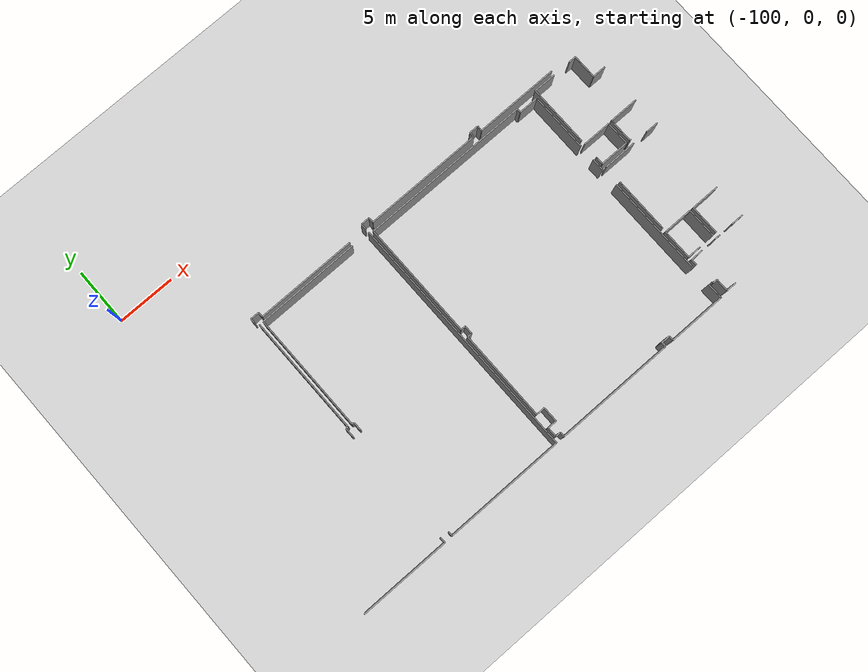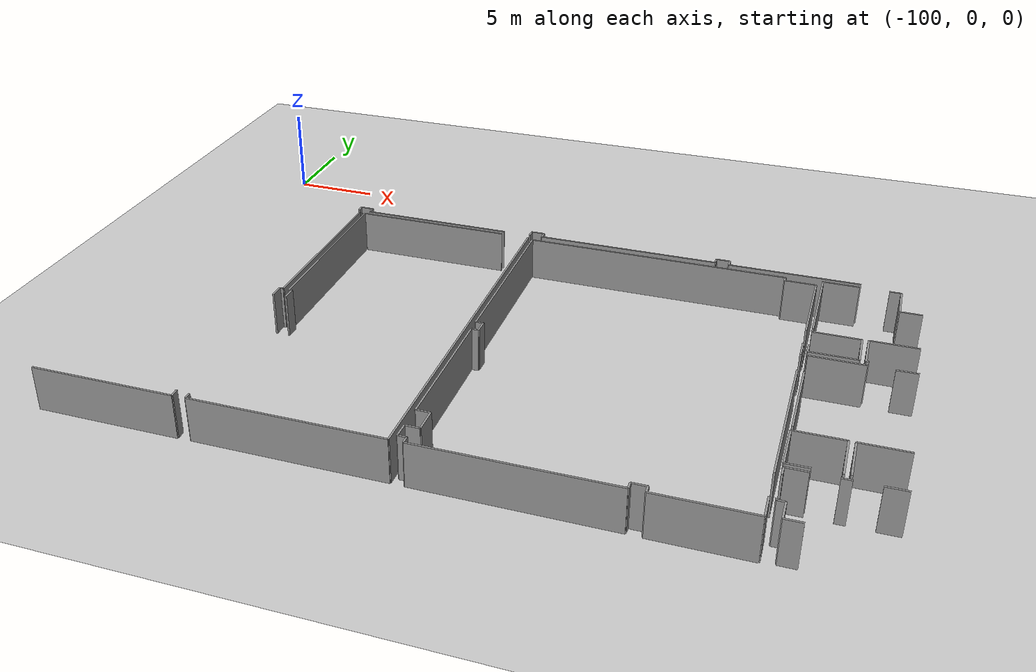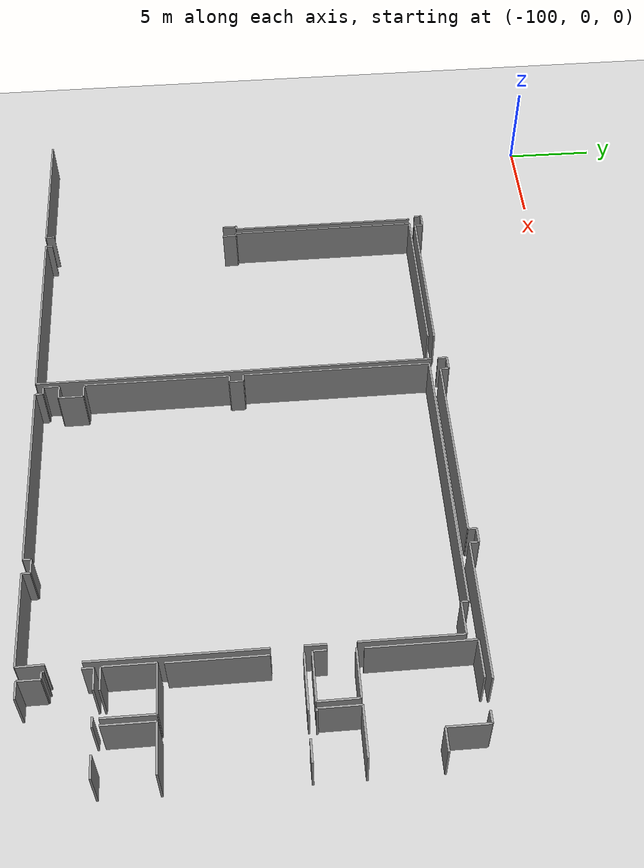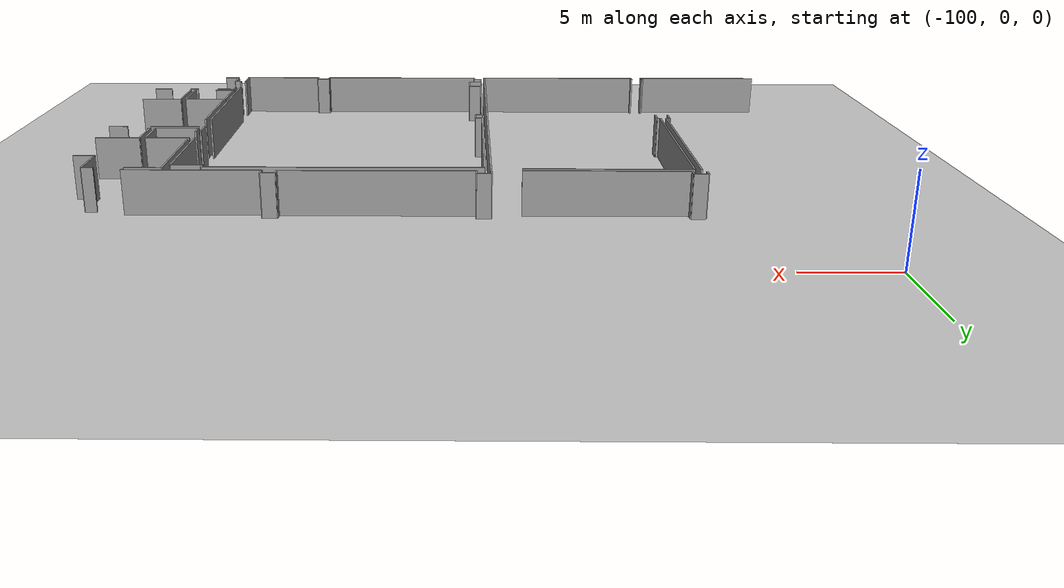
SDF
<sdf version="1.6">
 <world name="default">
  <model name="ground_plane">
   <static>1</static>
   <link name="link">
    <collision name="collision">
     <geometry><plane><normal>0 0 1</normal><size>100 100</size></plane></geometry>
     <surface><friction><ode><mu>100</mu><mu2>50</mu2></ode></friction></surface>
    </collision>
    <visual name="visual">
     <cast_shadows>0</cast_shadows>
     <geometry><plane><normal>0 0 1</normal><size>100 100</size></plane></geometry>
     <material>
      <script><uri>file://media/materials/scripts/gazebo.material</uri><name>Gazebo/Grey</name></script>
     </material>
    </visual>
   </link>
  </model>
  <model name="50015848">
   <static>1</static>
   <link name="Wall_131">
    <collision name="Wall_131_Collision">
     <geometry><box><size>7.38881946603 0.1 2.5</size></box></geometry>
     <pose>3.69440973301 0 1.25 0 0 0</pose>
    </collision>
    <visual name="Wall_131_Visual">
     <pose>3.69440973301 0 1.25 0 0 0</pose>
     <geometry><box><size>7.38881946603 0.1 2.5</size></box></geometry>
     <material>
      <script><uri>file://media/materials/scripts/gazebo.material</uri><name>Gazebo/Grey</name></script>
      <ambient>1 1 1 1</ambient>
     </material>
    </visual>
    <pose>70.0457345115 -51.2619807293 0 0 0 3.14159265359</pose>
   </link>
   <link name="Wall_132">
    <collision name="Wall_132_Collision">
     <geometry><box><size>0.46508382546 0.1 2.5</size></box></geometry>
     <pose>0.23254191273 0 1.25 0 0 0</pose>
    </collision>
    <visual name="Wall_132_Visual">
     <pose>0.23254191273 0 1.25 0 0 0</pose>
     <geometry><box><size>0.46508382546 0.1 2.5</size></box></geometry>
     <material>
      <script><uri>file://media/materials/scripts/gazebo.material</uri><name>Gazebo/Grey</name></script>
      <ambient>1 1 1 1</ambient>
     </material>
    </visual>
    <pose>62.6569150454 -51.2619807293 0 0 0 1.57079632679</pose>
   </link>
   <link name="Wall_133">
    <collision name="Wall_133_Collision">
     <geometry><box><size>0.789855945804 0.1 2.5</size></box></geometry>
     <pose>0.394927972902 0 1.25 0 0 0</pose>
    </collision>
    <visual name="Wall_133_Visual">
     <pose>0.394927972902 0 1.25 0 0 0</pose>
     <geometry><box><size>0.789855945804 0.1 2.5</size></box></geometry>
     <material>
      <script><uri>file://media/materials/scripts/gazebo.material</uri><name>Gazebo/Grey</name></script>
      <ambient>1 1 1 1</ambient>
     </material>
    </visual>
    <pose>62.6569150454 -50.7968969039 0 0 0 3.14159265359</pose>
   </link>
   <link name="Wall_134">
    <collision name="Wall_134_Collision">
     <geometry><box><size>0.427785777265 0.1 2.5</size></box></geometry>
     <pose>0.213892888632 0 1.25 0 0 0</pose>
    </collision>
    <visual name="Wall_134_Visual">
     <pose>0.213892888632 0 1.25 0 0 0</pose>
     <geometry><box><size>0.427785777265 0.1 2.5</size></box></geometry>
     <material>
      <script><uri>file://media/materials/scripts/gazebo.material</uri><name>Gazebo/Grey</name></script>
      <ambient>1 1 1 1</ambient>
     </material>
    </visual>
    <pose>61.8670590996 -50.7968969039 0 0 0 -1.57079632679</pose>
   </link>
   <link name="Wall_135">
    <collision name="Wall_135_Collision">
     <geometry><box><size>10.422901509 0.1 2.5</size></box></geometry>
     <pose>5.21145075452 0 1.25 0 0 0</pose>
    </collision>
    <visual name="Wall_135_Visual">
     <pose>5.21145075452 0 1.25 0 0 0</pose>
     <geometry><box><size>10.422901509 0.1 2.5</size></box></geometry>
     <material>
      <script><uri>file://media/materials/scripts/gazebo.material</uri><name>Gazebo/Grey</name></script>
      <ambient>1 1 1 1</ambient>
     </material>
    </visual>
    <pose>61.8670590996 -51.2246826811 0 0 0 3.14159265359</pose>
   </link>
   <link name="Wall_136">
    <collision name="Wall_136_Collision">
     <geometry><box><size>0.451382501633 0.1 2.5</size></box></geometry>
     <pose>0.225691250817 0 1.25 0 0 0</pose>
    </collision>
    <visual name="Wall_136_Visual">
     <pose>0.225691250817 0 1.25 0 0 0</pose>
     <geometry><box><size>0.451382501633 0.1 2.5</size></box></geometry>
     <material>
      <script><uri>file://media/materials/scripts/gazebo.material</uri><name>Gazebo/Grey</name></script>
      <ambient>1 1 1 1</ambient>
     </material>
    </visual>
    <pose>51.4441575906 -51.2246826811 0 0 0 1.57079632679</pose>
   </link>
   <link name="Wall_137">
    <collision name="Wall_137_Collision">
     <geometry><box><size>0.76752786253 0.1 2.5</size></box></geometry>
     <pose>0.383763931265 0 1.25 0 0 0</pose>
    </collision>
    <visual name="Wall_137_Visual">
     <pose>0.383763931265 0 1.25 0 0 0</pose>
     <geometry><box><size>0.76752786253 0.1 2.5</size></box></geometry>
     <material>
      <script><uri>file://media/materials/scripts/gazebo.material</uri><name>Gazebo/Grey</name></script>
      <ambient>1 1 1 1</ambient>
     </material>
    </visual>
    <pose>51.4441575906 -50.7733001795 0 0 0 3.14159265359</pose>
   </link>
   <link name="Wall_138">
    <collision name="Wall_138_Collision">
     <geometry><box><size>0.495277483524 0.1 2.5</size></box></geometry>
     <pose>0.247638741762 0 1.25 0 0 0</pose>
    </collision>
    <visual name="Wall_138_Visual">
     <pose>0.247638741762 0 1.25 0 0 0</pose>
     <geometry><box><size>0.495277483524 0.1 2.5</size></box></geometry>
     <material>
      <script><uri>file://media/materials/scripts/gazebo.material</uri><name>Gazebo/Grey</name></script>
      <ambient>1 1 1 1</ambient>
     </material>
    </visual>
    <pose>50.6766297281 -50.7733001795 0 0 0 -1.57079632679</pose>
   </link>
   <link name="Wall_139">
    <collision name="Wall_139_Collision">
     <geometry><box><size>8.83050320649 0.1 2.5</size></box></geometry>
     <pose>4.41525160325 0 1.25 0 0 0</pose>
    </collision>
    <visual name="Wall_139_Visual">
     <pose>4.41525160325 0 1.25 0 0 0</pose>
     <geometry><box><size>8.83050320649 0.1 2.5</size></box></geometry>
     <material>
      <script><uri>file://media/materials/scripts/gazebo.material</uri><name>Gazebo/Grey</name></script>
      <ambient>1 1 1 1</ambient>
     </material>
    </visual>
    <pose>49.0659629937 -51.268577663 0 0 0 3.14159265359</pose>
   </link>
   <link name="Wall_140">
    <collision name="Wall_140_Collision">
     <geometry><box><size>0.438696090682 0.1 2.5</size></box></geometry>
     <pose>0.219348045341 0 1.25 0 0 0</pose>
    </collision>
    <visual name="Wall_140_Visual">
     <pose>0.219348045341 0 1.25 0 0 0</pose>
     <geometry><box><size>0.438696090682 0.1 2.5</size></box></geometry>
     <material>
      <script><uri>file://media/materials/scripts/gazebo.material</uri><name>Gazebo/Grey</name></script>
      <ambient>1 1 1 1</ambient>
     </material>
    </visual>
    <pose>40.2354597872 -51.268577663 0 0 0 1.57079632679</pose>
   </link>
   <link name="Wall_141">
    <collision name="Wall_141_Collision">
     <geometry><box><size>0.767781590749 0.1 2.5</size></box></geometry>
     <pose>0.383890795375 0 1.25 0 0 0</pose>
    </collision>
    <visual name="Wall_141_Visual">
     <pose>0.383890795375 0 1.25 0 0 0</pose>
     <geometry><box><size>0.767781590749 0.1 2.5</size></box></geometry>
     <material>
      <script><uri>file://media/materials/scripts/gazebo.material</uri><name>Gazebo/Grey</name></script>
      <ambient>1 1 1 1</ambient>
     </material>
    </visual>
    <pose>40.2354597872 -50.8298815724 0 0 0 3.14159265359</pose>
   </link>
   <link name="Wall_142">
    <collision name="Wall_142_Collision">
     <geometry><box><size>0.405965150429 0.1 2.5</size></box></geometry>
     <pose>0.202982575215 0 1.25 0 0 0</pose>
    </collision>
    <visual name="Wall_142_Visual">
     <pose>0.202982575215 0 1.25 0 0 0</pose>
     <geometry><box><size>0.405965150429 0.1 2.5</size></box></geometry>
     <material>
      <script><uri>file://media/materials/scripts/gazebo.material</uri><name>Gazebo/Grey</name></script>
      <ambient>1 1 1 1</ambient>
     </material>
    </visual>
    <pose>39.4676781965 -50.8298815724 0 0 0 -1.57079632679</pose>
   </link>
   <link name="Wall_416">
    <collision name="Wall_416_Collision">
     <geometry><box><size>7.96199151279 0.1 2.5</size></box></geometry>
     <pose>3.9809957564 0 1.25 0 0 0</pose>
    </collision>
    <visual name="Wall_416_Visual">
     <pose>3.9809957564 0 1.25 0 0 0</pose>
     <geometry><box><size>7.96199151279 0.1 2.5</size></box></geometry>
     <material>
      <script><uri>file://media/materials/scripts/gazebo.material</uri><name>Gazebo/Grey</name></script>
      <ambient>1 1 1 1</ambient>
     </material>
    </visual>
    <pose>39.5189312967 -73.2477846355 0 0 0 3.14159265359</pose>
   </link>
   <link name="Wall_421">
    <collision name="Wall_421_Collision">
     <geometry><box><size>10.3757080603 0.1 2.5</size></box></geometry>
     <pose>5.18785403016 0 1.25 0 0 0</pose>
    </collision>
    <visual name="Wall_421_Visual">
     <pose>5.18785403016 0 1.25 0 0 0</pose>
     <geometry><box><size>10.3757080603 0.1 2.5</size></box></geometry>
     <material>
      <script><uri>file://media/materials/scripts/gazebo.material</uri><name>Gazebo/Grey</name></script>
      <ambient>1 1 1 1</ambient>
     </material>
    </visual>
    <pose>39.6752278797 -51.5773649056 0 0 0 -1.57079632679</pose>
   </link>
   <link name="Wall_422">
    <collision name="Wall_422_Collision">
     <geometry><box><size>0.202982575215 0.1 2.5</size></box></geometry>
     <pose>0.101491287607 0 1.25 0 0 0</pose>
    </collision>
    <visual name="Wall_422_Visual">
     <pose>0.101491287607 0 1.25 0 0 0</pose>
     <geometry><box><size>0.202982575215 0.1 2.5</size></box></geometry>
     <material>
      <script><uri>file://media/materials/scripts/gazebo.material</uri><name>Gazebo/Grey</name></script>
      <ambient>1 1 1 1</ambient>
     </material>
    </visual>
    <pose>39.6752278797 -61.9530729659 0 0 0 3.14159265359</pose>
   </link>
   <link name="Wall_423">
    <collision name="Wall_423_Collision">
     <geometry><box><size>0.812437757296 0.1 2.5</size></box></geometry>
     <pose>0.406218878648 0 1.25 0 0 0</pose>
    </collision>
    <visual name="Wall_423_Visual">
     <pose>0.406218878648 0 1.25 0 0 0</pose>
     <geometry><box><size>0.812437757296 0.1 2.5</size></box></geometry>
     <material>
      <script><uri>file://media/materials/scripts/gazebo.material</uri><name>Gazebo/Grey</name></script>
      <ambient>1 1 1 1</ambient>
     </material>
    </visual>
    <pose>39.4722453044 -61.9530729659 0 0 0 -1.57079632679</pose>
   </link>
   <link name="Wall_424">
    <collision name="Wall_424_Collision">
     <geometry><box><size>0.490147823403 0.1 2.5</size></box></geometry>
     <pose>0.245073911702 0 1.25 0 0 0</pose>
    </collision>
    <visual name="Wall_424_Visual">
     <pose>0.245073911702 0 1.25 0 0 0</pose>
     <geometry><box><size>0.490147823403 0.1 2.5</size></box></geometry>
     <material>
      <script><uri>file://media/materials/scripts/gazebo.material</uri><name>Gazebo/Grey</name></script>
      <ambient>1 1 1 1</ambient>
     </material>
    </visual>
    <pose>39.4722453044 -72.7598652703 0 0 0 -1.47540291353</pose>
   </link>
   <link name="Wall_425">
    <collision name="Wall_425_Collision">
     <geometry><box><size>10.5018109852 0.1 2.5</size></box></geometry>
     <pose>5.25090549258 0 1.25 0 0 0</pose>
    </collision>
    <visual name="Wall_425_Visual">
     <pose>5.25090549258 0 1.25 0 0 0</pose>
     <geometry><box><size>10.5018109852 0.1 2.5</size></box></geometry>
     <material>
      <script><uri>file://media/materials/scripts/gazebo.material</uri><name>Gazebo/Grey</name></script>
      <ambient>1 1 1 1</ambient>
     </material>
    </visual>
    <pose>50.7301663823 -73.2208894443 0 0 0 3.14159265359</pose>
   </link>
   <link name="Wall_426">
    <collision name="Wall_426_Collision">
     <geometry><box><size>0.375010307709 0.1 2.5</size></box></geometry>
     <pose>0.187505153854 0 1.25 0 0 0</pose>
    </collision>
    <visual name="Wall_426_Visual">
     <pose>0.187505153854 0 1.25 0 0 0</pose>
     <geometry><box><size>0.375010307709 0.1 2.5</size></box></geometry>
     <material>
      <script><uri>file://media/materials/scripts/gazebo.material</uri><name>Gazebo/Grey</name></script>
      <ambient>1 1 1 1</ambient>
     </material>
    </visual>
    <pose>40.2283553971 -73.2208894443 0 0 0 1.57079632679</pose>
   </link>
   <link name="Wall_427">
    <collision name="Wall_427_Collision">
     <geometry><box><size>0.76752786253 0.1 2.5</size></box></geometry>
     <pose>0.383763931265 0 1.25 0 0 0</pose>
    </collision>
    <visual name="Wall_427_Visual">
     <pose>0.383763931265 0 1.25 0 0 0</pose>
     <geometry><box><size>0.76752786253 0.1 2.5</size></box></geometry>
     <material>
      <script><uri>file://media/materials/scripts/gazebo.material</uri><name>Gazebo/Grey</name></script>
      <ambient>1 1 1 1</ambient>
     </material>
    </visual>
    <pose>40.2283553971 -62.7726151133 0 0 0 1.57079632679</pose>
   </link>
   <link name="Wall_428">
    <collision name="Wall_428_Collision">
     <geometry><box><size>0.19131107714 0.1 2.5</size></box></geometry>
     <pose>0.0956555385699 0 1.25 0 0 0</pose>
    </collision>
    <visual name="Wall_428_Visual">
     <pose>0.0956555385699 0 1.25 0 0 0</pose>
     <geometry><box><size>0.19131107714 0.1 2.5</size></box></geometry>
     <material>
      <script><uri>file://media/materials/scripts/gazebo.material</uri><name>Gazebo/Grey</name></script>
      <ambient>1 1 1 1</ambient>
     </material>
    </visual>
    <pose>40.2283553971 -62.0050872508 0 0 0 3.14159265359</pose>
   </link>
   <link name="Wall_429">
    <collision name="Wall_429_Collision">
     <geometry><box><size>10.4023495233 0.1 2.5</size></box></geometry>
     <pose>5.20117476165 0 1.25 0 0 0</pose>
    </collision>
    <visual name="Wall_429_Visual">
     <pose>5.20117476165 0 1.25 0 0 0</pose>
     <geometry><box><size>10.4023495233 0.1 2.5</size></box></geometry>
     <material>
      <script><uri>file://media/materials/scripts/gazebo.material</uri><name>Gazebo/Grey</name></script>
      <ambient>1 1 1 1</ambient>
     </material>
    </visual>
    <pose>40.03704432 -62.0050872508 0 0 0 1.57079632679</pose>
   </link>
   <link name="Wall_430">
    <collision name="Wall_430_Collision">
     <geometry><box><size>8.99644146173 0.1 2.5</size></box></geometry>
     <pose>4.49822073086 0 1.25 0 0 0</pose>
    </collision>
    <visual name="Wall_430_Visual">
     <pose>4.49822073086 0 1.25 0 0 0</pose>
     <geometry><box><size>8.99644146173 0.1 2.5</size></box></geometry>
     <material>
      <script><uri>file://media/materials/scripts/gazebo.material</uri><name>Gazebo/Grey</name></script>
      <ambient>1 1 1 1</ambient>
     </material>
    </visual>
    <pose>40.03704432 -51.6027377275 0 0 0 0.0</pose>
   </link>
   <link name="Wall_431">
    <collision name="Wall_431_Collision">
     <geometry><box><size>21.6181967971 0.1 2.5</size></box></geometry>
     <pose>10.8090983986 0 1.25 0 0 0</pose>
    </collision>
    <visual name="Wall_431_Visual">
     <pose>10.8090983986 0 1.25 0 0 0</pose>
     <geometry><box><size>21.6181967971 0.1 2.5</size></box></geometry>
     <material>
      <script><uri>file://media/materials/scripts/gazebo.material</uri><name>Gazebo/Grey</name></script>
      <ambient>1 1 1 1</ambient>
     </material>
    </visual>
    <pose>50.6860176722 -51.6027377275 0 0 0 -1.56875412405</pose>
   </link>
   <link name="Wall_432">
    <collision name="Wall_432_Collision">
     <geometry><box><size>5.02660974697 0.1 2.5</size></box></geometry>
     <pose>2.51330487348 0 1.25 0 0 0</pose>
    </collision>
    <visual name="Wall_432_Visual">
     <pose>2.51330487348 0 1.25 0 0 0</pose>
     <geometry><box><size>5.02660974697 0.1 2.5</size></box></geometry>
     <material>
      <script><uri>file://media/materials/scripts/gazebo.material</uri><name>Gazebo/Grey</name></script>
      <ambient>1 1 1 1</ambient>
     </material>
    </visual>
    <pose>67.6832710642 -73.2477846355 0 0 0 3.14159265359</pose>
   </link>
   <link name="Wall_433">
    <collision name="Wall_433_Collision">
     <geometry><box><size>0.421950028227 0.1 2.5</size></box></geometry>
     <pose>0.210975014114 0 1.25 0 0 0</pose>
    </collision>
    <visual name="Wall_433_Visual">
     <pose>0.210975014114 0 1.25 0 0 0</pose>
     <geometry><box><size>0.421950028227 0.1 2.5</size></box></geometry>
     <material>
      <script><uri>file://media/materials/scripts/gazebo.material</uri><name>Gazebo/Grey</name></script>
      <ambient>1 1 1 1</ambient>
     </material>
    </visual>
    <pose>62.6566613172 -73.2477846355 0 0 0 1.57079632679</pose>
   </link>
   <link name="Wall_434">
    <collision name="Wall_434_Collision">
     <geometry><box><size>0.786557478956 0.1 2.5</size></box></geometry>
     <pose>0.393278739478 0 1.25 0 0 0</pose>
    </collision>
    <visual name="Wall_434_Visual">
     <pose>0.393278739478 0 1.25 0 0 0</pose>
     <geometry><box><size>0.786557478956 0.1 2.5</size></box></geometry>
     <material>
      <script><uri>file://media/materials/scripts/gazebo.material</uri><name>Gazebo/Grey</name></script>
      <ambient>1 1 1 1</ambient>
     </material>
    </visual>
    <pose>62.6566613172 -72.8258346073 0 0 0 3.14159265359</pose>
   </link>
   <link name="Wall_435">
    <collision name="Wall_435_Collision">
     <geometry><box><size>0.402920411801 0.1 2.5</size></box></geometry>
     <pose>0.2014602059 0 1.25 0 0 0</pose>
    </collision>
    <visual name="Wall_435_Visual">
     <pose>0.2014602059 0 1.25 0 0 0</pose>
     <geometry><box><size>0.402920411801 0.1 2.5</size></box></geometry>
     <material>
      <script><uri>file://media/materials/scripts/gazebo.material</uri><name>Gazebo/Grey</name></script>
      <ambient>1 1 1 1</ambient>
     </material>
    </visual>
    <pose>61.8701038383 -72.8258346073 0 0 0 -1.57079632679</pose>
   </link>
   <link name="Wall_436">
    <collision name="Wall_436_Collision">
     <geometry><box><size>10.4018420669 0.1 2.5</size></box></geometry>
     <pose>5.20092103344 0 1.25 0 0 0</pose>
    </collision>
    <visual name="Wall_436_Visual">
     <pose>5.20092103344 0 1.25 0 0 0</pose>
     <geometry><box><size>10.4018420669 0.1 2.5</size></box></geometry>
     <material>
      <script><uri>file://media/materials/scripts/gazebo.material</uri><name>Gazebo/Grey</name></script>
      <ambient>1 1 1 1</ambient>
     </material>
    </visual>
    <pose>61.8701038383 -73.2287550191 0 0 0 3.14159265359</pose>
   </link>
   <link name="Wall_437">
    <collision name="Wall_437_Collision">
     <geometry><box><size>0.420681387132 0.1 2.5</size></box></geometry>
     <pose>0.210340693566 0 1.25 0 0 0</pose>
    </collision>
    <visual name="Wall_437_Visual">
     <pose>0.210340693566 0 1.25 0 0 0</pose>
     <geometry><box><size>0.420681387132 0.1 2.5</size></box></geometry>
     <material>
      <script><uri>file://media/materials/scripts/gazebo.material</uri><name>Gazebo/Grey</name></script>
      <ambient>1 1 1 1</ambient>
     </material>
    </visual>
    <pose>51.4682617714 -73.2287550191 0 0 0 1.57079632679</pose>
   </link>
   <link name="Wall_438">
    <collision name="Wall_438_Collision">
     <geometry><box><size>0.466859922993 0.1 2.5</size></box></geometry>
     <pose>0.233429961497 0 1.25 0 0 0</pose>
    </collision>
    <visual name="Wall_438_Visual">
     <pose>0.233429961497 0 1.25 0 0 0</pose>
     <geometry><box><size>0.466859922993 0.1 2.5</size></box></geometry>
     <material>
      <script><uri>file://media/materials/scripts/gazebo.material</uri><name>Gazebo/Grey</name></script>
      <ambient>1 1 1 1</ambient>
     </material>
    </visual>
    <pose>51.4682617714 -72.8080736319 0 0 0 3.14159265359</pose>
   </link>
   <link name="Wall_439">
    <collision name="Wall_439_Collision">
     <geometry><box><size>0.84516869755 0.1 2.5</size></box></geometry>
     <pose>0.422584348775 0 1.25 0 0 0</pose>
    </collision>
    <visual name="Wall_439_Visual">
     <pose>0.422584348775 0 1.25 0 0 0</pose>
     <geometry><box><size>0.84516869755 0.1 2.5</size></box></geometry>
     <material>
      <script><uri>file://media/materials/scripts/gazebo.material</uri><name>Gazebo/Grey</name></script>
      <ambient>1 1 1 1</ambient>
     </material>
    </visual>
    <pose>51.0014018484 -72.8080736319 0 0 0 1.57079632679</pose>
   </link>
   <link name="Wall_440">
    <collision name="Wall_440_Collision">
     <geometry><box><size>0.794676781965 0.1 2.5</size></box></geometry>
     <pose>0.397338390982 0 1.25 0 0 0</pose>
    </collision>
    <visual name="Wall_440_Visual">
     <pose>0.397338390982 0 1.25 0 0 0</pose>
     <geometry><box><size>0.794676781965 0.1 2.5</size></box></geometry>
     <material>
      <script><uri>file://media/materials/scripts/gazebo.material</uri><name>Gazebo/Grey</name></script>
      <ambient>1 1 1 1</ambient>
     </material>
    </visual>
    <pose>51.0014018484 -71.9629049344 0 0 0 0.0</pose>
   </link>
   <link name="Wall_441">
    <collision name="Wall_441_Collision">
     <geometry><box><size>1.33714771423 0.1 2.5</size></box></geometry>
     <pose>0.668573857113 0 1.25 0 0 0</pose>
    </collision>
    <visual name="Wall_441_Visual">
     <pose>0.668573857113 0 1.25 0 0 0</pose>
     <geometry><box><size>1.33714771423 0.1 2.5</size></box></geometry>
     <material>
      <script><uri>file://media/materials/scripts/gazebo.material</uri><name>Gazebo/Grey</name></script>
      <ambient>1 1 1 1</ambient>
     </material>
    </visual>
    <pose>51.7960786304 -71.9629049344 0 0 0 1.57079632679</pose>
   </link>
   <link name="Wall_442">
    <collision name="Wall_442_Collision">
     <geometry><box><size>0.769557688282 0.1 2.5</size></box></geometry>
     <pose>0.384778844141 0 1.25 0 0 0</pose>
    </collision>
    <visual name="Wall_442_Visual">
     <pose>0.384778844141 0 1.25 0 0 0</pose>
     <geometry><box><size>0.769557688282 0.1 2.5</size></box></geometry>
     <material>
      <script><uri>file://media/materials/scripts/gazebo.material</uri><name>Gazebo/Grey</name></script>
      <ambient>1 1 1 1</ambient>
     </material>
    </visual>
    <pose>51.7960786304 -70.6257572202 0 0 0 3.14159265359</pose>
   </link>
   <link name="Wall_443">
    <collision name="Wall_443_Collision">
     <geometry><box><size>7.85897785587 0.1 2.5</size></box></geometry>
     <pose>3.92948892793 0 1.25 0 0 0</pose>
    </collision>
    <visual name="Wall_443_Visual">
     <pose>3.92948892793 0 1.25 0 0 0</pose>
     <geometry><box><size>7.85897785587 0.1 2.5</size></box></geometry>
     <material>
      <script><uri>file://media/materials/scripts/gazebo.material</uri><name>Gazebo/Grey</name></script>
      <ambient>1 1 1 1</ambient>
     </material>
    </visual>
    <pose>51.0265209421 -70.6257572202 0 0 0 1.57079632679</pose>
   </link>
   <link name="Wall_444">
    <collision name="Wall_444_Collision">
     <geometry><box><size>0.403681596458 0.1 2.5</size></box></geometry>
     <pose>0.201840798229 0 1.25 0 0 0</pose>
    </collision>
    <visual name="Wall_444_Visual">
     <pose>0.201840798229 0 1.25 0 0 0</pose>
     <geometry><box><size>0.403681596458 0.1 2.5</size></box></geometry>
     <material>
      <script><uri>file://media/materials/scripts/gazebo.material</uri><name>Gazebo/Grey</name></script>
      <ambient>1 1 1 1</ambient>
     </material>
    </visual>
    <pose>51.0265209421 -62.7667793643 0 0 0 0.0</pose>
   </link>
   <link name="Wall_445">
    <collision name="Wall_445_Collision">
     <geometry><box><size>0.756871277331 0.1 2.5</size></box></geometry>
     <pose>0.378435638666 0 1.25 0 0 0</pose>
    </collision>
    <visual name="Wall_445_Visual">
     <pose>0.378435638666 0 1.25 0 0 0</pose>
     <geometry><box><size>0.756871277331 0.1 2.5</size></box></geometry>
     <material>
      <script><uri>file://media/materials/scripts/gazebo.material</uri><name>Gazebo/Grey</name></script>
      <ambient>1 1 1 1</ambient>
     </material>
    </visual>
    <pose>51.4302025386 -62.7667793643 0 0 0 1.57079632679</pose>
   </link>
   <link name="Wall_446">
    <collision name="Wall_446_Collision">
     <geometry><box><size>0.41611427919 0.1 2.5</size></box></geometry>
     <pose>0.208057139595 0 1.25 0 0 0</pose>
    </collision>
    <visual name="Wall_446_Visual">
     <pose>0.208057139595 0 1.25 0 0 0</pose>
     <geometry><box><size>0.41611427919 0.1 2.5</size></box></geometry>
     <material>
      <script><uri>file://media/materials/scripts/gazebo.material</uri><name>Gazebo/Grey</name></script>
      <ambient>1 1 1 1</ambient>
     </material>
    </visual>
    <pose>51.4302025386 -62.009908087 0 0 0 3.14159265359</pose>
   </link>
   <link name="Wall_447">
    <collision name="Wall_447_Collision">
     <geometry><box><size>10.2178891081 0.1 2.5</size></box></geometry>
     <pose>5.10894455404 0 1.25 0 0 0</pose>
    </collision>
    <visual name="Wall_447_Visual">
     <pose>5.10894455404 0 1.25 0 0 0</pose>
     <geometry><box><size>10.2178891081 0.1 2.5</size></box></geometry>
     <material>
      <script><uri>file://media/materials/scripts/gazebo.material</uri><name>Gazebo/Grey</name></script>
      <ambient>1 1 1 1</ambient>
     </material>
    </visual>
    <pose>51.0140882594 -62.009908087 0 0 0 1.57079632679</pose>
   </link>
   <link name="Wall_448">
    <collision name="Wall_448_Collision">
     <geometry><box><size>14.9232789298 0.1 2.5</size></box></geometry>
     <pose>7.46163946489 0 1.25 0 0 0</pose>
    </collision>
    <visual name="Wall_448_Visual">
     <pose>7.46163946489 0 1.25 0 0 0</pose>
     <geometry><box><size>14.9232789298 0.1 2.5</size></box></geometry>
     <material>
      <script><uri>file://media/materials/scripts/gazebo.material</uri><name>Gazebo/Grey</name></script>
      <ambient>1 1 1 1</ambient>
     </material>
    </visual>
    <pose>51.0140882594 -51.7920189789 0 0 0 0.0</pose>
   </link>
   <link name="Wall_449">
    <collision name="Wall_449_Collision">
     <geometry><box><size>0.353189680873 0.1 2.5</size></box></geometry>
     <pose>0.176594840437 0 1.25 0 0 0</pose>
    </collision>
    <visual name="Wall_449_Visual">
     <pose>0.176594840437 0 1.25 0 0 0</pose>
     <geometry><box><size>0.353189680873 0.1 2.5</size></box></geometry>
     <material>
      <script><uri>file://media/materials/scripts/gazebo.material</uri><name>Gazebo/Grey</name></script>
      <ambient>1 1 1 1</ambient>
     </material>
    </visual>
    <pose>65.9373671891 -51.7920189789 0 0 0 -1.57079632679</pose>
   </link>
   <link name="Wall_450">
    <collision name="Wall_450_Collision">
     <geometry><box><size>1.72814289973 0.1 2.5</size></box></geometry>
     <pose>0.864071449866 0 1.25 0 0 0</pose>
    </collision>
    <visual name="Wall_450_Visual">
     <pose>0.864071449866 0 1.25 0 0 0</pose>
     <geometry><box><size>1.72814289973 0.1 2.5</size></box></geometry>
     <material>
      <script><uri>file://media/materials/scripts/gazebo.material</uri><name>Gazebo/Grey</name></script>
      <ambient>1 1 1 1</ambient>
     </material>
    </visual>
    <pose>65.9373671891 -52.1452086597 0 0 0 0.0</pose>
   </link>
   <link name="Wall_451">
    <collision name="Wall_451_Collision">
     <geometry><box><size>5.16793636496 0.1 2.5</size></box></geometry>
     <pose>2.58396818248 0 1.25 0 0 0</pose>
    </collision>
    <visual name="Wall_451_Visual">
     <pose>2.58396818248 0 1.25 0 0 0</pose>
     <geometry><box><size>5.16793636496 0.1 2.5</size></box></geometry>
     <material>
      <script><uri>file://media/materials/scripts/gazebo.material</uri><name>Gazebo/Grey</name></script>
      <ambient>1 1 1 1</ambient>
     </material>
    </visual>
    <pose>67.6655100889 -52.1452086597 0 0 0 -1.57079632679</pose>
   </link>
   <link name="Wall_452">
    <collision name="Wall_452_Collision">
     <geometry><box><size>1.10118047054 0.1 2.5</size></box></geometry>
     <pose>0.550590235269 0 1.25 0 0 0</pose>
    </collision>
    <visual name="Wall_452_Visual">
     <pose>0.550590235269 0 1.25 0 0 0</pose>
     <geometry><box><size>1.10118047054 0.1 2.5</size></box></geometry>
     <material>
      <script><uri>file://media/materials/scripts/gazebo.material</uri><name>Gazebo/Grey</name></script>
      <ambient>1 1 1 1</ambient>
     </material>
    </visual>
    <pose>67.6655100889 -58.7309783126 0 0 0 -1.57079632679</pose>
   </link>
   <link name="Wall_453">
    <collision name="Wall_453_Collision">
     <geometry><box><size>8.75362355613 0.1 2.5</size></box></geometry>
     <pose>4.37681177806 0 1.25 0 0 0</pose>
    </collision>
    <visual name="Wall_453_Visual">
     <pose>4.37681177806 0 1.25 0 0 0</pose>
     <geometry><box><size>8.75362355613 0.1 2.5</size></box></geometry>
     <material>
      <script><uri>file://media/materials/scripts/gazebo.material</uri><name>Gazebo/Grey</name></script>
      <ambient>1 1 1 1</ambient>
     </material>
    </visual>
    <pose>67.6655100889 -61.3864978528 0 0 0 -1.57079632679</pose>
   </link>
   <link name="Wall_454">
    <collision name="Wall_454_Collision">
     <geometry><box><size>1.37608275616 0.1 2.5</size></box></geometry>
     <pose>0.688041378079 0 1.25 0 0 0</pose>
    </collision>
    <visual name="Wall_454_Visual">
     <pose>0.688041378079 0 1.25 0 0 0</pose>
     <geometry><box><size>1.37608275616 0.1 2.5</size></box></geometry>
     <material>
      <script><uri>file://media/materials/scripts/gazebo.material</uri><name>Gazebo/Grey</name></script>
      <ambient>1 1 1 1</ambient>
     </material>
    </visual>
    <pose>67.6655100889 -71.8718165038 0 0 0 -1.55788905911</pose>
   </link>
   <link name="Wall_455">
    <collision name="Wall_455_Collision">
     <geometry><box><size>2.56087891455 0.1 2.5</size></box></geometry>
     <pose>1.28043945728 0 1.25 0 0 0</pose>
    </collision>
    <visual name="Wall_455_Visual">
     <pose>1.28043945728 0 1.25 0 0 0</pose>
     <geometry><box><size>2.56087891455 0.1 2.5</size></box></geometry>
     <material>
      <script><uri>file://media/materials/scripts/gazebo.material</uri><name>Gazebo/Grey</name></script>
      <ambient>1 1 1 1</ambient>
     </material>
    </visual>
    <pose>70.5290867687 -59.4490291724 0 0 0 3.14159265359</pose>
   </link>
   <link name="Wall_456">
    <collision name="Wall_456_Collision">
     <geometry><box><size>0.693692950796 0.1 2.5</size></box></geometry>
     <pose>0.346846475398 0 1.25 0 0 0</pose>
    </collision>
    <visual name="Wall_456_Visual">
     <pose>0.346846475398 0 1.25 0 0 0</pose>
     <geometry><box><size>0.693692950796 0.1 2.5</size></box></geometry>
     <material>
      <script><uri>file://media/materials/scripts/gazebo.material</uri><name>Gazebo/Grey</name></script>
      <ambient>1 1 1 1</ambient>
     </material>
    </visual>
    <pose>67.9682078542 -59.4490291724 0 0 0 1.57079632679</pose>
   </link>
   <link name="Wall_457">
    <collision name="Wall_457_Collision">
     <geometry><box><size>2.5481925036 0.1 2.5</size></box></geometry>
     <pose>1.2740962518 0 1.25 0 0 0</pose>
    </collision>
    <visual name="Wall_457_Visual">
     <pose>1.2740962518 0 1.25 0 0 0</pose>
     <geometry><box><size>2.5481925036 0.1 2.5</size></box></geometry>
     <material>
      <script><uri>file://media/materials/scripts/gazebo.material</uri><name>Gazebo/Grey</name></script>
      <ambient>1 1 1 1</ambient>
     </material>
    </visual>
    <pose>67.9682078542 -57.3801292745 0 0 0 0.0</pose>
   </link>
   <link name="Wall_458">
    <collision name="Wall_458_Collision">
     <geometry><box><size>2.06893879379 0.1 2.5</size></box></geometry>
     <pose>1.03446939689 0 1.25 0 0 0</pose>
    </collision>
    <visual name="Wall_458_Visual">
     <pose>1.03446939689 0 1.25 0 0 0</pose>
     <geometry><box><size>2.06893879379 0.1 2.5</size></box></geometry>
     <material>
      <script><uri>file://media/materials/scripts/gazebo.material</uri><name>Gazebo/Grey</name></script>
      <ambient>1 1 1 1</ambient>
     </material>
    </visual>
    <pose>70.5164003578 -57.3801292745 0 0 0 -1.56466444387</pose>
   </link>
   <link name="Wall_460">
    <collision name="Wall_460_Collision">
     <geometry><box><size>0.145132541278 0.1 2.5</size></box></geometry>
     <pose>0.0725662706392 0 1.25 0 0 0</pose>
    </collision>
    <visual name="Wall_460_Visual">
     <pose>0.0725662706392 0 1.25 0 0 0</pose>
     <geometry><box><size>0.145132541278 0.1 2.5</size></box></geometry>
     <material>
      <script><uri>file://media/materials/scripts/gazebo.material</uri><name>Gazebo/Grey</name></script>
      <ambient>1 1 1 1</ambient>
     </material>
    </visual>
    <pose>70.9959466917 -59.4518201828 0 0 0 3.14159265359</pose>
   </link>
   <link name="Wall_461">
    <collision name="Wall_461_Collision">
     <geometry><box><size>2.0973174584 0.1 2.5</size></box></geometry>
     <pose>1.0486587292 0 1.25 0 0 0</pose>
    </collision>
    <visual name="Wall_461_Visual">
     <pose>1.0486587292 0 1.25 0 0 0</pose>
     <geometry><box><size>2.0973174584 0.1 2.5</size></box></geometry>
     <material>
      <script><uri>file://media/materials/scripts/gazebo.material</uri><name>Gazebo/Grey</name></script>
      <ambient>1 1 1 1</ambient>
     </material>
    </visual>
    <pose>70.8508141504 -59.4518201828 0 0 0 1.57079632679</pose>
   </link>
   <link name="Wall_462">
    <collision name="Wall_462_Collision">
     <geometry><box><size>2.56772957646 0.1 2.5</size></box></geometry>
     <pose>1.28386478823 0 1.25 0 0 0</pose>
    </collision>
    <visual name="Wall_462_Visual">
     <pose>1.28386478823 0 1.25 0 0 0</pose>
     <geometry><box><size>2.56772957646 0.1 2.5</size></box></geometry>
     <material>
      <script><uri>file://media/materials/scripts/gazebo.material</uri><name>Gazebo/Grey</name></script>
      <ambient>1 1 1 1</ambient>
     </material>
    </visual>
    <pose>70.8508141504 -57.3545027244 0 0 0 0.0</pose>
   </link>
   <link name="Wall_465">
    <collision name="Wall_465_Collision">
     <geometry><box><size>4.92410354649 0.1 2.5</size></box></geometry>
     <pose>2.46205177324 0 1.25 0 0 0</pose>
    </collision>
    <visual name="Wall_465_Visual">
     <pose>2.46205177324 0 1.25 0 0 0</pose>
     <geometry><box><size>4.92410354649 0.1 2.5</size></box></geometry>
     <material>
      <script><uri>file://media/materials/scripts/gazebo.material</uri><name>Gazebo/Grey</name></script>
      <ambient>1 1 1 1</ambient>
     </material>
    </visual>
    <pose>68.0100730103 -66.3410487856 0 0 0 1.57079632679</pose>
   </link>
   <link name="Wall_466">
    <collision name="Wall_466_Collision">
     <geometry><box><size>2.92776991925 0.1 2.5</size></box></geometry>
     <pose>1.46388495963 0 1.25 0 0 0</pose>
    </collision>
    <visual name="Wall_466_Visual">
     <pose>1.46388495963 0 1.25 0 0 0</pose>
     <geometry><box><size>2.92776991925 0.1 2.5</size></box></geometry>
     <material>
      <script><uri>file://media/materials/scripts/gazebo.material</uri><name>Gazebo/Grey</name></script>
      <ambient>1 1 1 1</ambient>
     </material>
    </visual>
    <pose>68.0100730103 -59.8352035217 0 0 0 0.0</pose>
   </link>
   <link name="Wall_467">
    <collision name="Wall_467_Collision">
     <geometry><box><size>1.12985175929 0.1 2.5</size></box></geometry>
     <pose>0.564925879644 0 1.25 0 0 0</pose>
    </collision>
    <visual name="Wall_467_Visual">
     <pose>0.564925879644 0 1.25 0 0 0</pose>
     <geometry><box><size>1.12985175929 0.1 2.5</size></box></geometry>
     <material>
      <script><uri>file://media/materials/scripts/gazebo.material</uri><name>Gazebo/Grey</name></script>
      <ambient>1 1 1 1</ambient>
     </material>
    </visual>
    <pose>72.2990948246 -59.8352035217 0 0 0 0.0</pose>
   </link>
   <link name="Wall_473">
    <collision name="Wall_473_Collision">
     <geometry><box><size>1.18947789076 0.1 2.5</size></box></geometry>
     <pose>0.594738945379 0 1.25 0 0 0</pose>
    </collision>
    <visual name="Wall_473_Visual">
     <pose>0.594738945379 0 1.25 0 0 0</pose>
     <geometry><box><size>1.18947789076 0.1 2.5</size></box></geometry>
     <material>
      <script><uri>file://media/materials/scripts/gazebo.material</uri><name>Gazebo/Grey</name></script>
      <ambient>1 1 1 1</ambient>
     </material>
    </visual>
    <pose>69.1604767553 -69.2914005163 0 0 0 3.14159265359</pose>
   </link>
   <link name="Wall_474">
    <collision name="Wall_474_Collision">
     <geometry><box><size>2.62405724109 0.1 2.5</size></box></geometry>
     <pose>1.31202862054 0 1.25 0 0 0</pose>
    </collision>
    <visual name="Wall_474_Visual">
     <pose>1.31202862054 0 1.25 0 0 0</pose>
     <geometry><box><size>2.62405724109 0.1 2.5</size></box></geometry>
     <material>
      <script><uri>file://media/materials/scripts/gazebo.material</uri><name>Gazebo/Grey</name></script>
      <ambient>1 1 1 1</ambient>
     </material>
    </visual>
    <pose>67.9709988646 -69.2914005163 0 0 0 1.57079632679</pose>
   </link>
   <link name="Wall_475">
    <collision name="Wall_475_Collision">
     <geometry><box><size>2.59005765974 0.1 2.5</size></box></geometry>
     <pose>1.29502882987 0 1.25 0 0 0</pose>
    </collision>
    <visual name="Wall_475_Visual">
     <pose>1.29502882987 0 1.25 0 0 0</pose>
     <geometry><box><size>2.59005765974 0.1 2.5</size></box></geometry>
     <material>
      <script><uri>file://media/materials/scripts/gazebo.material</uri><name>Gazebo/Grey</name></script>
      <ambient>1 1 1 1</ambient>
     </material>
    </visual>
    <pose>67.9709988646 -66.6673432753 0 0 0 0.0</pose>
   </link>
   <link name="Wall_476">
    <collision name="Wall_476_Collision">
     <geometry><box><size>2.6240643068 0.1 2.5</size></box></geometry>
     <pose>1.3120321534 0 1.25 0 0 0</pose>
    </collision>
    <visual name="Wall_476_Visual">
     <pose>1.3120321534 0 1.25 0 0 0</pose>
     <geometry><box><size>2.6240643068 0.1 2.5</size></box></geometry>
     <material>
      <script><uri>file://media/materials/scripts/gazebo.material</uri><name>Gazebo/Grey</name></script>
      <ambient>1 1 1 1</ambient>
     </material>
    </visual>
    <pose>70.5610565243 -66.6673432753 0 0 0 -1.57311695694</pose>
   </link>
   <link name="Wall_478">
    <collision name="Wall_478_Collision">
     <geometry><box><size>2.58701292111 0.1 2.5</size></box></geometry>
     <pose>1.29350646055 0 1.25 0 0 0</pose>
    </collision>
    <visual name="Wall_478_Visual">
     <pose>1.29350646055 0 1.25 0 0 0</pose>
     <geometry><box><size>2.58701292111 0.1 2.5</size></box></geometry>
     <material>
      <script><uri>file://media/materials/scripts/gazebo.material</uri><name>Gazebo/Grey</name></script>
      <ambient>1 1 1 1</ambient>
     </material>
    </visual>
    <pose>70.8949628605 -69.2675500637 0 0 0 1.57079632679</pose>
   </link>
   <link name="Wall_479">
    <collision name="Wall_479_Collision">
     <geometry><box><size>2.5228196817 0.1 2.5</size></box></geometry>
     <pose>1.26140984085 0 1.25 0 0 0</pose>
    </collision>
    <visual name="Wall_479_Visual">
     <pose>1.26140984085 0 1.25 0 0 0</pose>
     <geometry><box><size>2.5228196817 0.1 2.5</size></box></geometry>
     <material>
      <script><uri>file://media/materials/scripts/gazebo.material</uri><name>Gazebo/Grey</name></script>
      <ambient>1 1 1 1</ambient>
     </material>
    </visual>
    <pose>70.8949628605 -66.6805371426 0 0 0 0.0</pose>
   </link>
   <link name="Wall_482">
    <collision name="Wall_482_Collision">
     <geometry><box><size>0.906063470114 0.1 2.5</size></box></geometry>
     <pose>0.453031735057 0 1.25 0 0 0</pose>
    </collision>
    <visual name="Wall_482_Visual">
     <pose>0.453031735057 0 1.25 0 0 0</pose>
     <geometry><box><size>0.906063470114 0.1 2.5</size></box></geometry>
     <material>
      <script><uri>file://media/materials/scripts/gazebo.material</uri><name>Gazebo/Grey</name></script>
      <ambient>1 1 1 1</ambient>
     </material>
    </visual>
    <pose>69.3043406555 -73.1488306301 0 0 0 3.14159265359</pose>
   </link>
   <link name="Wall_483">
    <collision name="Wall_483_Collision">
     <geometry><box><size>1.14228444202 0.1 2.5</size></box></geometry>
     <pose>0.57114222101 0 1.25 0 0 0</pose>
    </collision>
    <visual name="Wall_483_Visual">
     <pose>0.57114222101 0 1.25 0 0 0</pose>
     <geometry><box><size>1.14228444202 0.1 2.5</size></box></geometry>
     <material>
      <script><uri>file://media/materials/scripts/gazebo.material</uri><name>Gazebo/Grey</name></script>
      <ambient>1 1 1 1</ambient>
     </material>
    </visual>
    <pose>68.3982771854 -73.1488306301 0 0 0 1.57079632679</pose>
   </link>
   <link name="Wall_484">
    <collision name="Wall_484_Collision">
     <geometry><box><size>0.399368216735 0.1 2.5</size></box></geometry>
     <pose>0.199684108367 0 1.25 0 0 0</pose>
    </collision>
    <visual name="Wall_484_Visual">
     <pose>0.199684108367 0 1.25 0 0 0</pose>
     <geometry><box><size>0.399368216735 0.1 2.5</size></box></geometry>
     <material>
      <script><uri>file://media/materials/scripts/gazebo.material</uri><name>Gazebo/Grey</name></script>
      <ambient>1 1 1 1</ambient>
     </material>
    </visual>
    <pose>68.3982771854 -72.0065461881 0 0 0 3.14159265359</pose>
   </link>
   <link name="Wall_485">
    <collision name="Wall_485_Collision">
     <geometry><box><size>0.118744806501 0.1 2.5</size></box></geometry>
     <pose>0.0593724032503 0 1.25 0 0 0</pose>
    </collision>
    <visual name="Wall_485_Visual">
     <pose>0.0593724032503 0 1.25 0 0 0</pose>
     <geometry><box><size>0.118744806501 0.1 2.5</size></box></geometry>
     <material>
      <script><uri>file://media/materials/scripts/gazebo.material</uri><name>Gazebo/Grey</name></script>
      <ambient>1 1 1 1</ambient>
     </material>
    </visual>
    <pose>67.9989089687 -72.0065461881 0 0 0 1.57079632679</pose>
   </link>
   <link name="Wall_486">
    <collision name="Wall_486_Collision">
     <geometry><box><size>0.560485635811 0.1 2.5</size></box></geometry>
     <pose>0.280242817906 0 1.25 0 0 0</pose>
    </collision>
    <visual name="Wall_486_Visual">
     <pose>0.280242817906 0 1.25 0 0 0</pose>
     <geometry><box><size>0.560485635811 0.1 2.5</size></box></geometry>
     <material>
      <script><uri>file://media/materials/scripts/gazebo.material</uri><name>Gazebo/Grey</name></script>
      <ambient>1 1 1 1</ambient>
     </material>
    </visual>
    <pose>67.9989089687 -70.1588972972 0 0 0 1.57079632679</pose>
   </link>
   <link name="Wall_487">
    <collision name="Wall_487_Collision">
     <geometry><box><size>1.12985175929 0.1 2.5</size></box></geometry>
     <pose>0.564925879644 0 1.25 0 0 0</pose>
    </collision>
    <visual name="Wall_487_Visual">
     <pose>0.564925879644 0 1.25 0 0 0</pose>
     <geometry><box><size>1.12985175929 0.1 2.5</size></box></geometry>
     <material>
      <script><uri>file://media/materials/scripts/gazebo.material</uri><name>Gazebo/Grey</name></script>
      <ambient>1 1 1 1</ambient>
     </material>
    </visual>
    <pose>67.9989089687 -69.5984116613 0 0 0 0.0</pose>
   </link>
   <link name="Wall_488">
    <collision name="Wall_488_Collision">
     <geometry><box><size>0.515322012826 0.1 2.5</size></box></geometry>
     <pose>0.257661006413 0 1.25 0 0 0</pose>
    </collision>
    <visual name="Wall_488_Visual">
     <pose>0.257661006413 0 1.25 0 0 0</pose>
     <geometry><box><size>0.515322012826 0.1 2.5</size></box></geometry>
     <material>
      <script><uri>file://media/materials/scripts/gazebo.material</uri><name>Gazebo/Grey</name></script>
      <ambient>1 1 1 1</ambient>
     </material>
    </visual>
    <pose>70.4562667698 -69.5984116613 0 0 0 0.0</pose>
   </link>
   <link name="Wall_489">
    <collision name="Wall_489_Collision">
     <geometry><box><size>1.12553837956 0.1 2.5</size></box></geometry>
     <pose>0.562769189782 0 1.25 0 0 0</pose>
    </collision>
    <visual name="Wall_489_Visual">
     <pose>0.562769189782 0 1.25 0 0 0</pose>
     <geometry><box><size>1.12553837956 0.1 2.5</size></box></geometry>
     <material>
      <script><uri>file://media/materials/scripts/gazebo.material</uri><name>Gazebo/Grey</name></script>
      <ambient>1 1 1 1</ambient>
     </material>
    </visual>
    <pose>72.2612893199 -69.5984116613 0 0 0 0.0</pose>
   </link>
   <link name="Wall_506">
    <collision name="Wall_506_Collision">
     <geometry><box><size>5.39476939276 0.1 2.5</size></box></geometry>
     <pose>2.69738469638 0 1.25 0 0 0</pose>
    </collision>
    <visual name="Wall_506_Visual">
     <pose>2.69738469638 0 1.25 0 0 0</pose>
     <geometry><box><size>5.39476939276 0.1 2.5</size></box></geometry>
     <material>
      <script><uri>file://media/materials/scripts/gazebo.material</uri><name>Gazebo/Grey</name></script>
      <ambient>1 1 1 1</ambient>
     </material>
    </visual>
    <pose>67.9920583067 -57.015775552 0 0 0 1.57079632679</pose>
   </link>
   <link name="Wall_507">
    <collision name="Wall_507_Collision">
     <geometry><box><size>1.98948296532 0.1 2.5</size></box></geometry>
     <pose>0.994741482661 0 1.25 0 0 0</pose>
    </collision>
    <visual name="Wall_507_Visual">
     <pose>0.994741482661 0 1.25 0 0 0</pose>
     <geometry><box><size>1.98948296532 0.1 2.5</size></box></geometry>
     <material>
      <script><uri>file://media/materials/scripts/gazebo.material</uri><name>Gazebo/Grey</name></script>
      <ambient>1 1 1 1</ambient>
     </material>
    </visual>
    <pose>67.9920583067 -51.6210061593 0 0 0 0.0</pose>
   </link>
   <link name="Wall_508">
    <collision name="Wall_508_Collision">
     <geometry><box><size>0.638126470831 0.1 2.5</size></box></geometry>
     <pose>0.319063235415 0 1.25 0 0 0</pose>
    </collision>
    <visual name="Wall_508_Visual">
     <pose>0.319063235415 0 1.25 0 0 0</pose>
     <geometry><box><size>0.638126470831 0.1 2.5</size></box></geometry>
     <material>
      <script><uri>file://media/materials/scripts/gazebo.material</uri><name>Gazebo/Grey</name></script>
      <ambient>1 1 1 1</ambient>
     </material>
    </visual>
    <pose>71.5906856371 -51.6210061593 0 0 0 0.0</pose>
   </link>
   <link name="Wall_509">
    <collision name="Wall_509_Collision">
     <geometry><box><size>2.13563041948 0.1 2.5</size></box></geometry>
     <pose>1.06781520974 0 1.25 0 0 0</pose>
    </collision>
    <visual name="Wall_509_Visual">
     <pose>1.06781520974 0 1.25 0 0 0</pose>
     <geometry><box><size>2.13563041948 0.1 2.5</size></box></geometry>
     <material>
      <script><uri>file://media/materials/scripts/gazebo.material</uri><name>Gazebo/Grey</name></script>
      <ambient>1 1 1 1</ambient>
     </material>
    </visual>
    <pose>72.2288121079 -51.6210061593 0 0 0 -1.57079632679</pose>
   </link>
   <link name="Wall_510">
    <collision name="Wall_510_Collision">
     <geometry><box><size>1.18973161898 0.1 2.5</size></box></geometry>
     <pose>0.594865809488 0 1.25 0 0 0</pose>
    </collision>
    <visual name="Wall_510_Visual">
     <pose>0.594865809488 0 1.25 0 0 0</pose>
     <geometry><box><size>1.18973161898 0.1 2.5</size></box></geometry>
     <material>
      <script><uri>file://media/materials/scripts/gazebo.material</uri><name>Gazebo/Grey</name></script>
      <ambient>1 1 1 1</ambient>
     </material>
    </visual>
    <pose>72.2288121079 -53.7566365787 0 0 0 0.0</pose>
   </link>
   <pose>-131.8 43.7717730528 0 0 0 0</pose>
  </model>
 </world>
</sdf>
